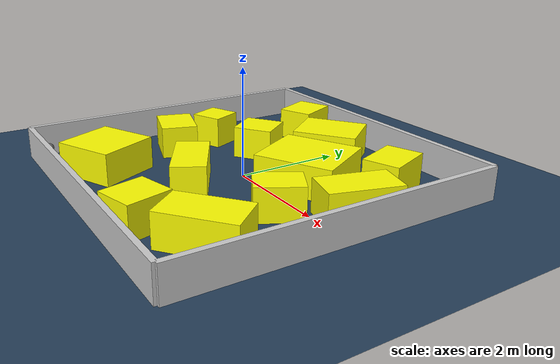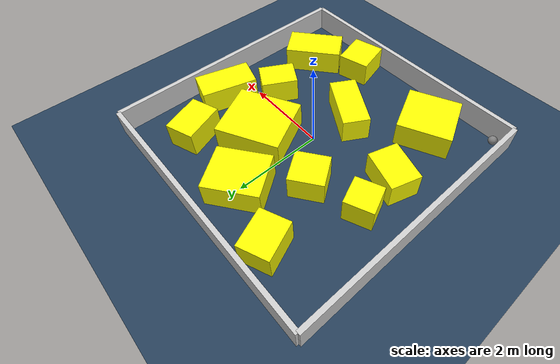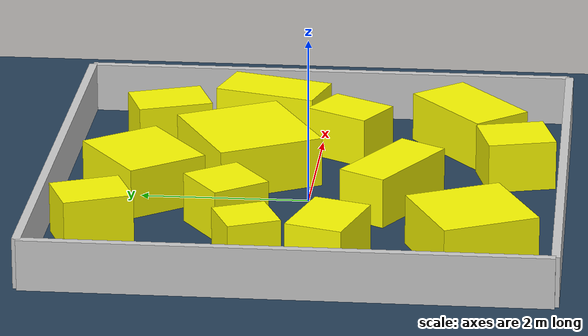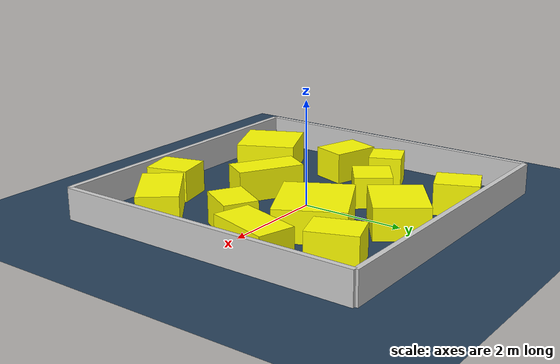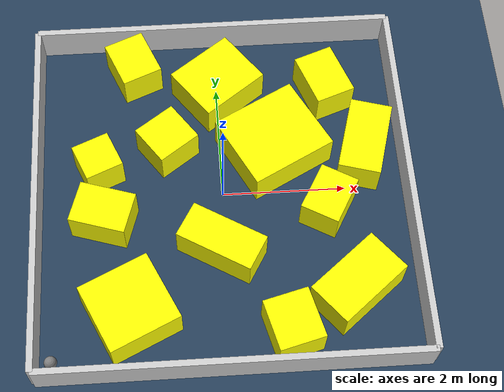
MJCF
<?xml version="1.0" ?>
<mujoco model="generated_environment">
  <option timestep="0.01" integrator="RK4" cone="elliptic"/>
  <default>
    <geom density="1"/>
  </default>
  <asset>
    <texture builtin="gradient" height="3072" rgb1="0.3 0.5 0.7" rgb2="0 0 0" type="skybox" width="512"/>
    <texture builtin="checker" height="300" mark="edge" markrgb="0.8 0.8 0.8" name="groundplane" rgb1="0.2 0.3 0.4" rgb2="0.1 0.2 0.3" type="2d" width="300"/>
    <material name="groundplane" reflectance="0.2" texrepeat="5 5" texture="groundplane" texuniform="true"/>
    <material name="robot" rgba="1.0 1.0 0.0 1.0"/>
  </asset>
  <worldbody>
    <light dir="0 0 -1" directional="true" pos="0 0 1.5"/>
    <geom condim="4" friction="0.5 0.005 0.001" material="groundplane" name="floor" size="0 0 0.05" type="plane"/>
    <body name="walls">
      <geom name="wall_1" condim="4" pos="-3.0 0.0 0.3" rgba="0.800000011920929 0.800000011920929 0.800000011920929 1.0" size="0.05 3.0 0.3" type="box"/>
      <geom name="wall_2" condim="4" pos="3.0 0.0 0.3" rgba="0.800000011920929 0.800000011920929 0.800000011920929 1.0" size="0.05 3.0 0.3" type="box"/>
      <geom name="wall_3" condim="4" pos="0.0 -3.0 0.3" rgba="0.800000011920929 0.800000011920929 0.800000011920929 1.0" size="3.0 0.05 0.3" type="box"/>
      <geom name="wall_4" condim="4" pos="0.0 3.0 0.3" rgba="0.800000011920929 0.800000011920929 0.800000011920929 1.0" size="3.0 0.05 0.3" type="box"/>
    </body>
    <body name="robot">
      <joint name="joint_x" type="slide" pos="0 0 0" axis="1 0 0"/>
      <joint name="joint_y" type="slide" pos="0 0 0" axis="0 1 0"/>
      <geom name="robot" type="sphere" pos="-2.75 -2.75 0.2" size="0.1 0.0 0.0" mass="5.0" friction="1.0 0.005 0.001" condim="4" rgba="0.5 0.5 0.5 1.0"/>
    </body>
    <body name="obstacle_1_movable">
      <geom name="obstacle_1_movable" condim="4" pos="0.016345320896338222 1.968206960910786 0.3" euler="0 0 126.4590167166742" friction="0.0 0.005 0.001" rgba="1 1 0 1" size="0.49978799782453465 0.5969276204001299 0.3" type="box" mass="0.1"/>
      <joint type="free"/>
    </body>
    <body name="obstacle_2_movable">
      <geom name="obstacle_2_movable" condim="4" pos="-1.535491781652631 -2.0055496417664944 0.3" euler="0 0 25.415642192646054" friction="0.0 0.005 0.001" rgba="1 1 0 1" size="0.5904004518096555 0.5829533815410325 0.3" type="box" mass="0.1"/>
      <joint type="free"/>
    </body>
    <body name="obstacle_3_movable">
      <geom name="obstacle_3_movable" condim="4" pos="-1.9272063805813666 -0.3938119813867895 0.3" euler="0 0 72.7157942773271" friction="0.0 0.005 0.001" rgba="1 1 0 1" size="0.342138203514823 0.4575803741375025 0.3" type="box" mass="0.1"/>
      <joint type="free"/>
    </body>
    <body name="obstacle_4_movable">
      <geom name="obstacle_4_movable" condim="4" pos="0.8764695689597084 0.8000038738559074 0.3" euler="0 0 207.85406970994717" friction="0.0 0.005 0.001" rgba="1 1 0 1" size="0.7261127374962488 0.6501685045225231 0.3" type="box" mass="0.1"/>
      <joint type="free"/>
    </body>
    <body name="obstacle_5_movable">
      <geom name="obstacle_5_movable" condim="4" pos="-1.388610295149918 2.3899170337359292 0.3" euler="0 0 112.68577713804252" friction="0.0 0.005 0.001" rgba="1 1 0 1" size="0.4147500485484494 0.34028131942109024 0.3" type="box" mass="0.1"/>
      <joint type="free"/>
    </body>
    <body name="obstacle_6_movable">
      <geom name="obstacle_6_movable" condim="4" pos="-0.08050843685770115 -1.0002404807337921 0.3" euler="0 0 149.47688208729664" friction="0.0 0.005 0.001" rgba="1 1 0 1" size="0.6443888660487499 0.30545274434475034 0.3" type="box" mass="0.1"/>
      <joint type="free"/>
    </body>
    <body name="obstacle_7_movable">
      <geom name="obstacle_7_movable" condim="4" pos="0.9186973877659459 -2.4143293163041983 0.3" euler="0 0 14.642754712424795" friction="0.0 0.005 0.001" rgba="1 1 0 1" size="0.3672834863250062 0.41053719770906927 0.3" type="box" mass="0.1"/>
      <joint type="free"/>
    </body>
    <body name="obstacle_8_movable">
      <geom name="obstacle_8_movable" condim="4" pos="1.6714789883280865 -0.36277771901072775 0.3" euler="0 0 60.57485309480495" friction="0.0 0.005 0.001" rgba="1 1 0 1" size="0.4138096566851207 0.3174894976678509 0.3" type="box" mass="0.1"/>
      <joint type="free"/>
    </body>
    <body name="obstacle_9_movable">
      <geom name="obstacle_9_movable" condim="4" pos="-0.868259367875108 0.8859203819443318 0.3" euler="0 0 35.7163208899519" friction="0.0 0.005 0.001" rgba="1 1 0 1" size="0.37518995411701783 0.3575594805553986 0.3" type="box" mass="0.1"/>
      <joint type="free"/>
    </body>
    <body name="obstacle_10_movable">
      <geom name="obstacle_10_movable" condim="4" pos="1.964227828278486 -1.8075924343291905 0.3" euler="0 0 309.37617109432125" friction="0.0 0.005 0.001" rgba="1 1 0 1" size="0.3809106158895062 0.662387079132093 0.3" type="box" mass="0.1"/>
      <joint type="free"/>
    </body>
    <body name="obstacle_11_movable">
      <geom name="obstacle_11_movable" condim="4" pos="-2.0019484127375953 0.5302208359545855 0.3" euler="0 0 113.18446707773214" friction="0.0 0.005 0.001" rgba="1 1 0 1" size="0.31618358236428895 0.3146511858561348 0.3" type="box" mass="0.1"/>
      <joint type="free"/>
    </body>
    <body name="obstacle_12_movable">
      <geom name="obstacle_12_movable" condim="4" pos="1.8161578211479963 1.8768757070158375 0.3" euler="0 0 200.06702278247116" friction="0.0 0.005 0.001" rgba="1 1 0 1" size="0.33330517951310473 0.45701915799720005 0.3" type="box" mass="0.1"/>
      <joint type="free"/>
    </body>
    <body name="obstacle_13_movable">
      <geom name="obstacle_13_movable" condim="4" pos="2.363122939959293 0.644894580466143 0.3" euler="0 0 344.06540318628146" friction="0.0 0.005 0.001" rgba="1 1 0 1" size="0.3432679071802802 0.634157125808674 0.3" type="box" mass="0.1"/>
      <joint type="free"/>
    </body>
  </worldbody>
  <actuator>
    <motor name="actuator_x" joint="joint_x" gear="1" ctrlrange="-1 1"/>
    <motor name="actuator_y" joint="joint_y" gear="1" ctrlrange="-1 1"/>
  </actuator>
</mujoco>
